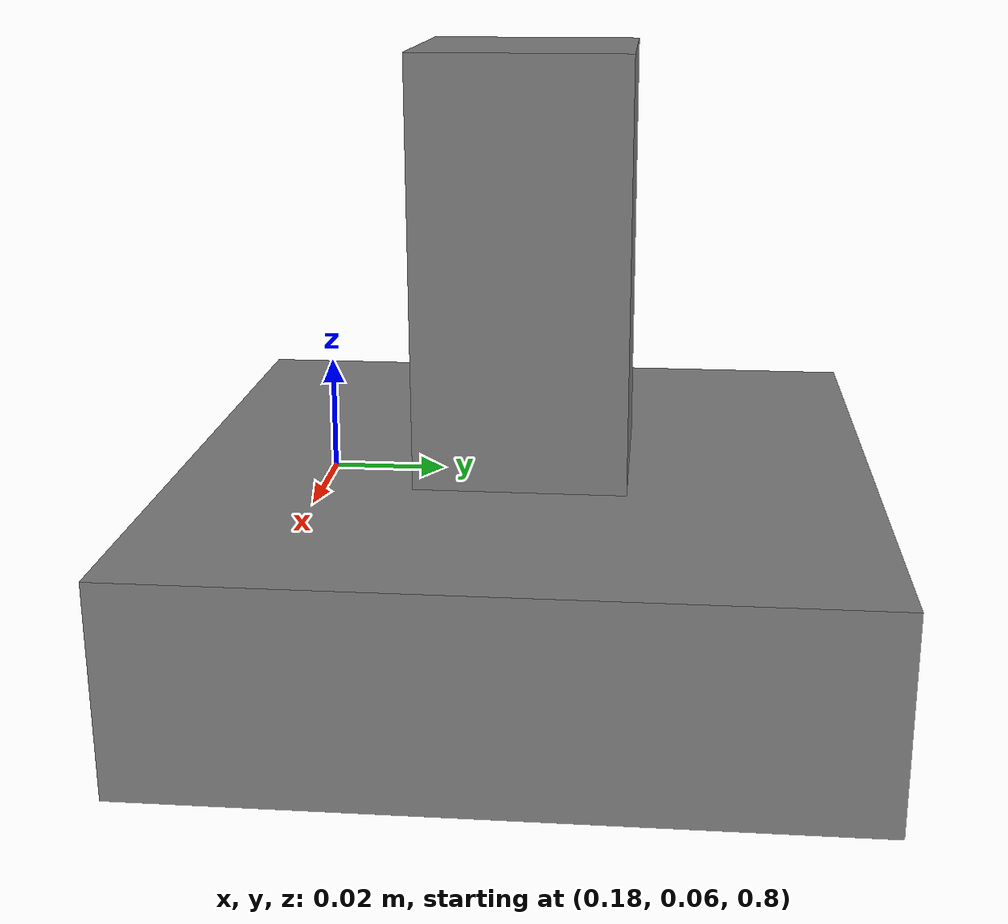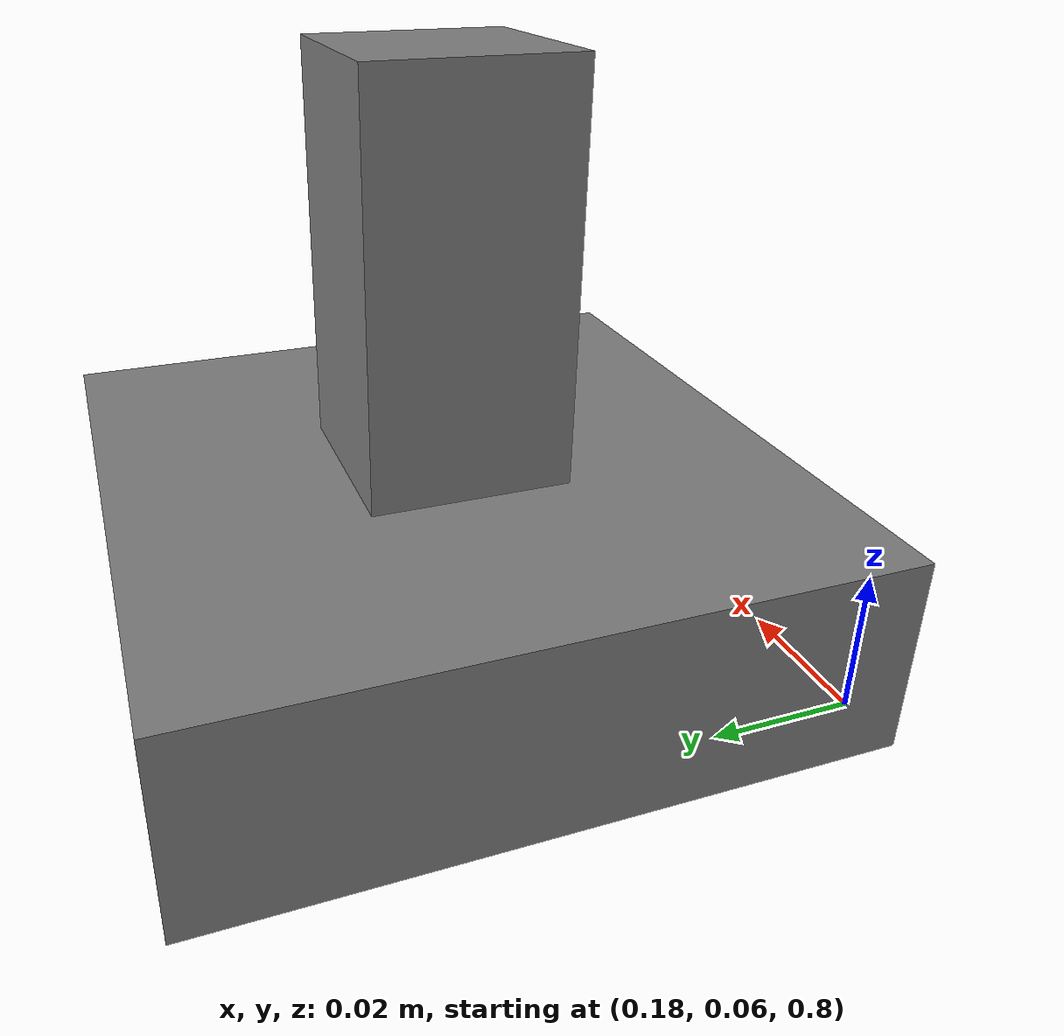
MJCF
<mujoco model="peg_with_base">
  <asset>
    <material name="peg-red" rgba="0.68 0.04 0.04 1" reflectance="0.08" shininess="0.15" specular="0.15"/>
  </asset>
  <worldbody>
    <body>
      <body name="object" pos="0.23 0.1 0.85">
        <geom pos="0 0 -0.045" size="0.05 0.05 0.015" type="box" group="0" friction="1 0.005 0.0001" density="100"/>
        <geom pos="0 0 -0.045" size="0.05 0.05 0.015" type="box" conaffinity="0" contype="0" group="1" material="peg-red" />
        <geom pos="0 0 0" size="0.015 0.015 0.03" type="box" group="0" friction="1 0.005 0.0001" density="100"/>
        <geom pos="0 0 0" size="0.015 0.015 0.03" type="box" conaffinity="0" contype="0" group="1" material="peg-red" />
      </body>
      <site rgba="0 0 0 0" size="0.005" pos="0 0 -0.06" name="bottom_site"/>
      <site rgba="0 0 0 0" size="0.005" pos="0 0 0.03" name="top_site"/>
      <site rgba="0 0 0 0" size="0.005" pos="0.01 0.01 0" name="horizontal_radius_site"/>
    </body>
  </worldbody>
</mujoco>
